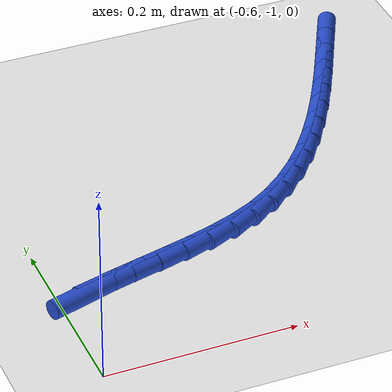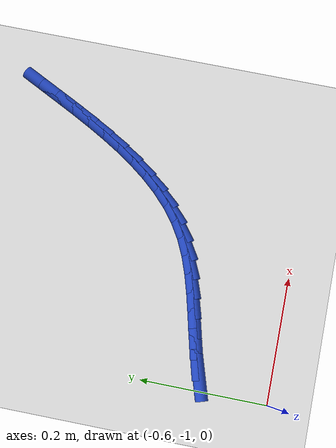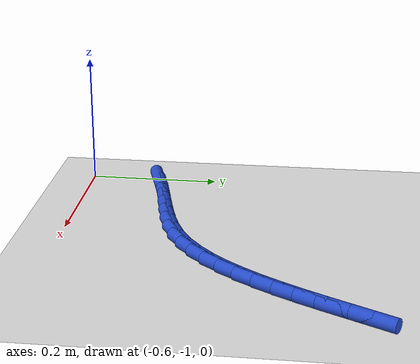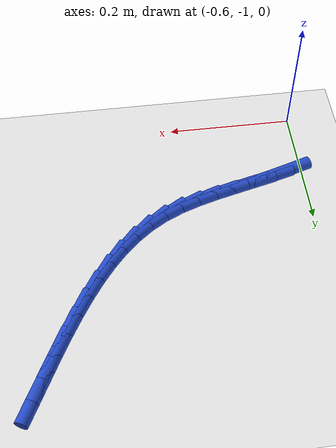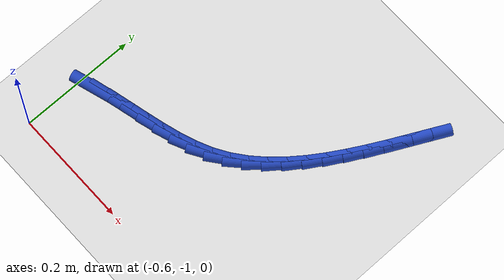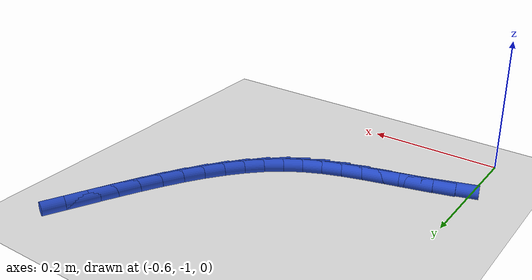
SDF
<sdf version="1.6">
 <world name="default">
  <model name="ground_plane">
   <static>1</static>
   <link name="link">
    <collision name="collision">
     <geometry><plane><normal>0 0 1</normal><size>100 100</size></plane></geometry>
     <surface><friction><ode><mu>100</mu><mu2>50</mu2></ode></friction></surface>
    </collision>
    <visual name="visual">
     <cast_shadows>0</cast_shadows>
     <geometry><plane><normal>0 0 1</normal><size>100 100</size></plane></geometry>
     <material>
      <script><uri>file://media/materials/scripts/gazebo.material</uri><name>Gazebo/WhiteGlow</name></script>
     </material>
    </visual>
   </link>
  </model>
  <model name="line">
   <link name="link_183">
    <pose>-0.574893741055874 -0.8872204420452444 0.01 0 1.57 0.2975621342158039</pose>
    <collision name="collision">
     <geometry><cylinder><radius>0.01</radius><length>0.08</length></cylinder></geometry>
    </collision>
    <visual name="visual">
     <material>
      <script><name>Gazebo/Blue</name><uri>file://media/materials/scripts/gazebo.material</uri></script>
     </material>
     <geometry><cylinder><radius>0.01</radius><length>0.08</length></cylinder></geometry>
    </visual>
   </link>
   <link name="link_184">
    <pose>-0.5448561524161745 -0.8780089014059484 0.01 0 1.57 0.2572674599638996</pose>
    <collision name="collision">
     <geometry><cylinder><radius>0.01</radius><length>0.08</length></cylinder></geometry>
    </collision>
    <visual name="visual">
     <material>
      <script><name>Gazebo/Blue</name><uri>file://media/materials/scripts/gazebo.material</uri></script>
     </material>
     <geometry><cylinder><radius>0.01</radius><length>0.08</length></cylinder></geometry>
    </visual>
   </link>
   <link name="link_185">
    <pose>-0.5143997018497629 -0.8699958779459751 0.01 0 1.57 0.24127003233534042</pose>
    <collision name="collision">
     <geometry><cylinder><radius>0.01</radius><length>0.08</length></cylinder></geometry>
    </collision>
    <visual name="visual">
     <material>
      <script><name>Gazebo/Blue</name><uri>file://media/materials/scripts/gazebo.material</uri></script>
     </material>
     <geometry><cylinder><radius>0.01</radius><length>0.08</length></cylinder></geometry>
    </visual>
   </link>
   <link name="link_186">
    <pose>-0.4839079376535208 -0.862492976515658 0.01 0 1.57 0.24950997471925024</pose>
    <collision name="collision">
     <geometry><cylinder><radius>0.01</radius><length>0.08</length></cylinder></geometry>
    </collision>
    <visual name="visual">
     <material>
      <script><name>Gazebo/Blue</name><uri>file://media/materials/scripts/gazebo.material</uri></script>
     </material>
     <geometry><cylinder><radius>0.01</radius><length>0.08</length></cylinder></geometry>
    </visual>
   </link>
   <link name="link_187">
    <pose>-0.4537644081243314 -0.8548118019653299 0.01 0 1.57 0.28283553283225843</pose>
    <collision name="collision">
     <geometry><cylinder><radius>0.01</radius><length>0.08</length></cylinder></geometry>
    </collision>
    <visual name="visual">
     <material>
      <script><name>Gazebo/Blue</name><uri>file://media/materials/scripts/gazebo.material</uri></script>
     </material>
     <geometry><cylinder><radius>0.01</radius><length>0.08</length></cylinder></geometry>
    </visual>
   </link>
   <link name="link_188">
    <pose>-0.4243526615590759 -0.8462639591453239 0.01 0 1.57 0.34293127761564085</pose>
    <collision name="collision">
     <geometry><cylinder><radius>0.01</radius><length>0.08</length></cylinder></geometry>
    </collision>
    <visual name="visual">
     <material>
      <script><name>Gazebo/Blue</name><uri>file://media/materials/scripts/gazebo.material</uri></script>
     </material>
     <geometry><cylinder><radius>0.01</radius><length>0.08</length></cylinder></geometry>
    </visual>
   </link>
   <link name="link_189">
    <pose>-0.3960562462546365 -0.8361610529059734 0.01 0 1.57 0.4317391177374307</pose>
    <collision name="collision">
     <geometry><cylinder><radius>0.01</radius><length>0.08</length></cylinder></geometry>
    </collision>
    <visual name="visual">
     <material>
      <script><name>Gazebo/Blue</name><uri>file://media/materials/scripts/gazebo.material</uri></script>
     </material>
     <geometry><cylinder><radius>0.01</radius><length>0.08</length></cylinder></geometry>
    </visual>
   </link>
   <link name="link_190">
    <pose>-0.3692587105078941 -0.8238146880976108 0.01 0 1.57 0.5464764489924615</pose>
    <collision name="collision">
     <geometry><cylinder><radius>0.01</radius><length>0.08</length></cylinder></geometry>
    </collision>
    <visual name="visual">
     <material>
      <script><name>Gazebo/Blue</name><uri>file://media/materials/scripts/gazebo.material</uri></script>
     </material>
     <geometry><cylinder><radius>0.01</radius><length>0.08</length></cylinder></geometry>
    </visual>
   </link>
   <link name="link_191">
    <pose>-0.3442926185846079 -0.8086286233516385 0.01 0 1.57 0.6603077732743556</pose>
    <collision name="collision">
     <geometry><cylinder><radius>0.01</radius><length>0.08</length></cylinder></geometry>
    </collision>
    <visual name="visual">
     <material>
      <script><name>Gazebo/Blue</name><uri>file://media/materials/scripts/gazebo.material</uri></script>
     </material>
     <geometry><cylinder><radius>0.01</radius><length>0.08</length></cylinder></geometry>
    </visual>
   </link>
   <link name="link_192">
    <pose>-0.3211368531182486 -0.790645897854381 0.01 0 1.57 0.7603671603224332</pose>
    <collision name="collision">
     <geometry><cylinder><radius>0.01</radius><length>0.08</length></cylinder></geometry>
    </collision>
    <visual name="visual">
     <material>
      <script><name>Gazebo/Blue</name><uri>file://media/materials/scripts/gazebo.material</uri></script>
     </material>
     <geometry><cylinder><radius>0.01</radius><length>0.08</length></cylinder></geometry>
    </visual>
   </link>
   <link name="link_193">
    <pose>-0.2996203919429111 -0.7701805041428127 0.01 0 1.57 0.8458740485121814</pose>
    <collision name="collision">
     <geometry><cylinder><radius>0.01</radius><length>0.08</length></cylinder></geometry>
    </collision>
    <visual name="visual">
     <material>
      <script><name>Gazebo/Blue</name><uri>file://media/materials/scripts/gazebo.material</uri></script>
     </material>
     <geometry><cylinder><radius>0.01</radius><length>0.08</length></cylinder></geometry>
    </visual>
   </link>
   <link name="link_194">
    <pose>-0.27957167198627364 -0.7475474124437925 0.01 0 1.57 0.917226169411454</pose>
    <collision name="collision">
     <geometry><cylinder><radius>0.01</radius><length>0.08</length></cylinder></geometry>
    </collision>
    <visual name="visual">
     <material>
      <script><name>Gazebo/Blue</name><uri>file://media/materials/scripts/gazebo.material</uri></script>
     </material>
     <geometry><cylinder><radius>0.01</radius><length>0.08</length></cylinder></geometry>
    </visual>
   </link>
   <link name="link_195">
    <pose>-0.2608191301760144 -0.7230615929841794 0.01 0 1.57 0.9754114216660751</pose>
    <collision name="collision">
     <geometry><cylinder><radius>0.01</radius><length>0.08</length></cylinder></geometry>
    </collision>
    <visual name="visual">
     <material>
      <script><name>Gazebo/Blue</name><uri>file://media/materials/scripts/gazebo.material</uri></script>
     </material>
     <geometry><cylinder><radius>0.01</radius><length>0.08</length></cylinder></geometry>
    </visual>
   </link>
   <link name="link_196">
    <pose>-0.24319120343981251 -0.6970380159908334 0.01 0 1.57 1.0215973249631722</pose>
    <collision name="collision">
     <geometry><cylinder><radius>0.01</radius><length>0.08</length></cylinder></geometry>
    </collision>
    <visual name="visual">
     <material>
      <script><name>Gazebo/Blue</name><uri>file://media/materials/scripts/gazebo.material</uri></script>
     </material>
     <geometry><cylinder><radius>0.01</radius><length>0.08</length></cylinder></geometry>
    </visual>
   </link>
   <link name="link_197">
    <pose>-0.22651632870534574 -0.669791651690613 0.01 0 1.57 1.0568794385313753</pose>
    <collision name="collision">
     <geometry><cylinder><radius>0.01</radius><length>0.08</length></cylinder></geometry>
    </collision>
    <visual name="visual">
     <material>
      <script><name>Gazebo/Blue</name><uri>file://media/materials/scripts/gazebo.material</uri></script>
     </material>
     <geometry><cylinder><radius>0.01</radius><length>0.08</length></cylinder></geometry>
    </visual>
   </link>
   <link name="link_198">
    <pose>-0.21062294290029251 -0.6416374703103774 0.01 0 1.57 1.0821476932855243</pose>
    <collision name="collision">
     <geometry><cylinder><radius>0.01</radius><length>0.08</length></cylinder></geometry>
    </collision>
    <visual name="visual">
     <material>
      <script><name>Gazebo/Blue</name><uri>file://media/materials/scripts/gazebo.material</uri></script>
     </material>
     <geometry><cylinder><radius>0.01</radius><length>0.08</length></cylinder></geometry>
    </visual>
   </link>
   <link name="link_199">
    <pose>-0.19533948295233083 -0.6128904420769848 0.01 0 1.57 1.098022277772895</pose>
    <collision name="collision">
     <geometry><cylinder><radius>0.01</radius><length>0.08</length></cylinder></geometry>
    </collision>
    <visual name="visual">
     <material>
      <script><name>Gazebo/Blue</name><uri>file://media/materials/scripts/gazebo.material</uri></script>
     </material>
     <geometry><cylinder><radius>0.01</radius><length>0.08</length></cylinder></geometry>
    </visual>
   </link>
   <link name="link_200">
    <pose>-0.18049438578913973 -0.5838655372172958 0.01 0 1.57 1.1048224018905701</pose>
    <collision name="collision">
     <geometry><cylinder><radius>0.01</radius><length>0.08</length></cylinder></geometry>
    </collision>
    <visual name="visual">
     <material>
      <script><name>Gazebo/Blue</name><uri>file://media/materials/scripts/gazebo.material</uri></script>
     </material>
     <geometry><cylinder><radius>0.01</radius><length>0.08</length></cylinder></geometry>
    </visual>
   </link>
   <link name="link_201">
    <pose>-0.16591608833839713 -0.5548777259581688 0.01 0 1.57 1.102846601863321</pose>
    <collision name="collision">
     <geometry><cylinder><radius>0.01</radius><length>0.08</length></cylinder></geometry>
    </collision>
    <visual name="visual">
     <material>
      <script><name>Gazebo/Blue</name><uri>file://media/materials/scripts/gazebo.material</uri></script>
     </material>
     <geometry><cylinder><radius>0.01</radius><length>0.08</length></cylinder></geometry>
    </visual>
   </link>
  </model>
 </world>
</sdf>
